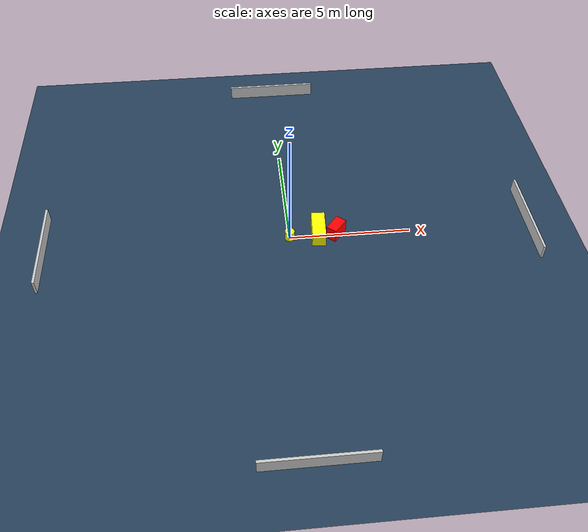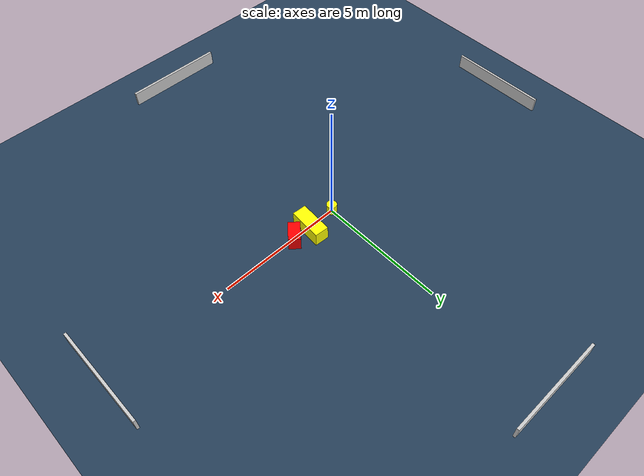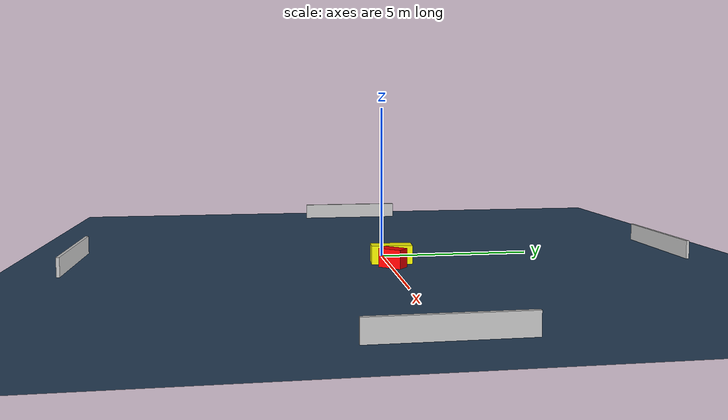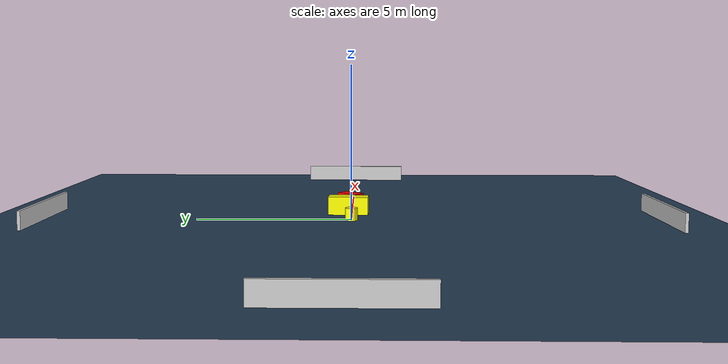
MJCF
<?xml version="1.0" ?>
<mujoco model="generated_environment">
  <option timestep="0.01" integrator="RK4" cone="elliptic"/>
  <default>
    <geom density="1"/>
  </default>
  <asset>
    <texture builtin="gradient" height="3072" name="skybox" rgb1="0.3 0.5 0.7" rgb2="0 0 0" type="skybox" width="512"/>
    <texture builtin="checker" height="300" name="groundplane" rgb1="0.2 0.3 0.4" rgb2="0.1 0.2 0.3" type="2d" width="300"/>
    <material name="groundplane" reflectance="0.2" texrepeat="5 5" texture="groundplane"/>
  </asset>
  <worldbody>
    <light dir="0 0 -1" directional="true" pos="0 0 1.5"/>
    <geom condim="3" friction="0.5 0.005 0.001" material="groundplane" name="floor" pos="0 0 0" size="0 0 0.05" type="plane"/>
    <body name="walls">
      <geom name="wall_1" condim="4" pos="-10.0 0.0 0.3" rgba="0.800000011920929 0.800000011920929 0.800000011920929 1.0" size="0.05 2.0 0.3" type="box"/>
      <geom name="wall_2" condim="4" pos="10.0 0.0 0.3" rgba="0.800000011920929 0.800000011920929 0.800000011920929 1.0" size="0.05 2.0 0.3" type="box"/>
      <geom name="wall_3" condim="4" pos="0.0 -10.0 0.3" rgba="0.800000011920929 0.800000011920929 0.800000011920929 1.0" size="2.0 0.05 0.3" type="box"/>
      <geom name="wall_4" condim="4" pos="0.0 10.0 0.3" rgba="0.800000011920929 0.800000011920929 0.800000011920929 1.0" size="2.0 0.05 0.3" type="box"/>
    </body>
    <body name="robot">
      <joint name="joint_x" type="slide" pos="0 0 0" axis="1 0 0"/>
      <joint name="joint_y" type="slide" pos="0 0 0" axis="0 1 0"/>
      <geom name="robot" type="cylinder" pos="0.0 0.0 0.2" size="0.2 0.2 0.0" mass="5.0" friction="1.0 0.005 0.0001" condim="4" rgba="1.0 1.0 0.0 1.0"/>
    </body>
    <body name="obstacle_1_movable">
      <geom name="obstacle_1_movable" condim="4" pos="1.1942300318480759 0.11984250709474728 0.3" euler="0 0 356.5039773853128" friction="0.0 0.005 0.001" rgba="1.0 1.0 0.0 1.0" size="0.2799870889343595 0.6600040509977214 0.3" type="box" mass="0.1"/>
      <joint type="free"/>
    </body>
    <body name="obstacle_2_static">
      <geom name="obstacle_2_static" condim="4" pos="1.924707946372063 0.052719367659039805 0.3" euler="0 0 230.06931084449505" friction="0.0 0.005 0.001" rgba="1.0 0.0 0.0 1.0" size="0.3875045931645043 0.22847572550386164 0.3" type="box"/>
    </body>
  </worldbody>
  <actuator>
    <motor name="actuator_x" joint="joint_x" gear="1" ctrlrange="-1 1"/>
    <motor name="actuator_y" joint="joint_y" gear="1" ctrlrange="-1 1"/>
  </actuator>
</mujoco>
